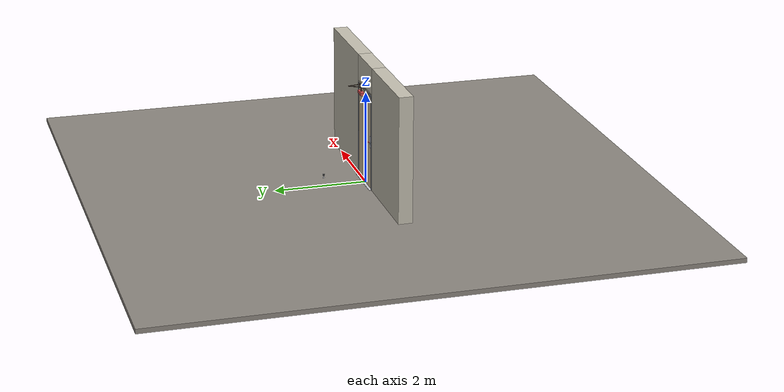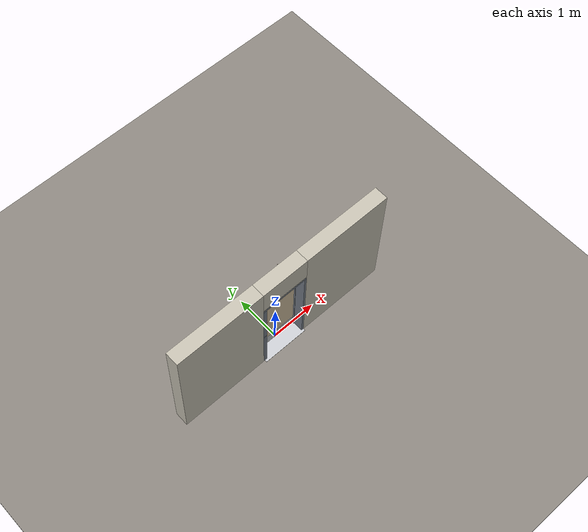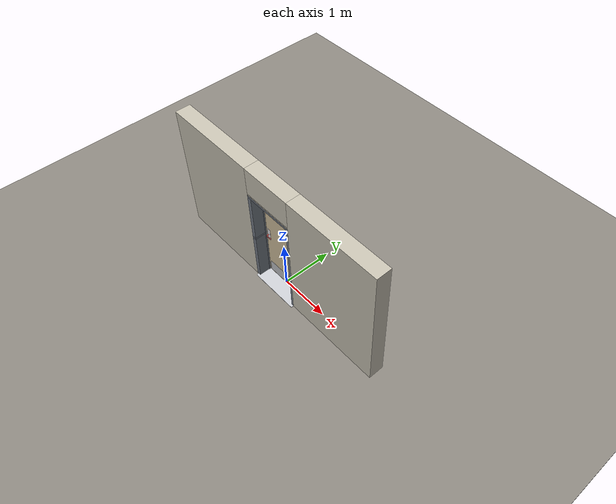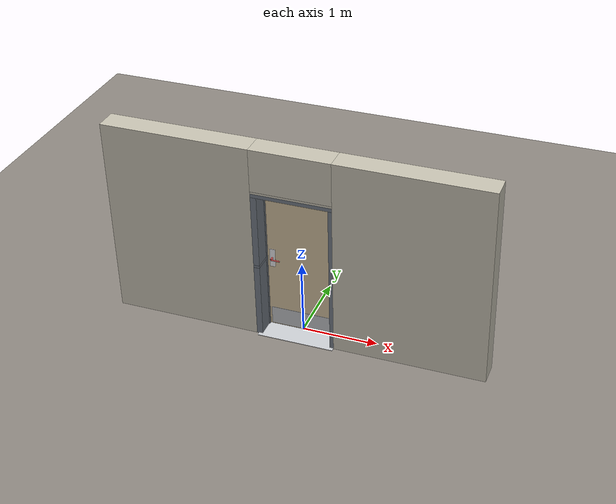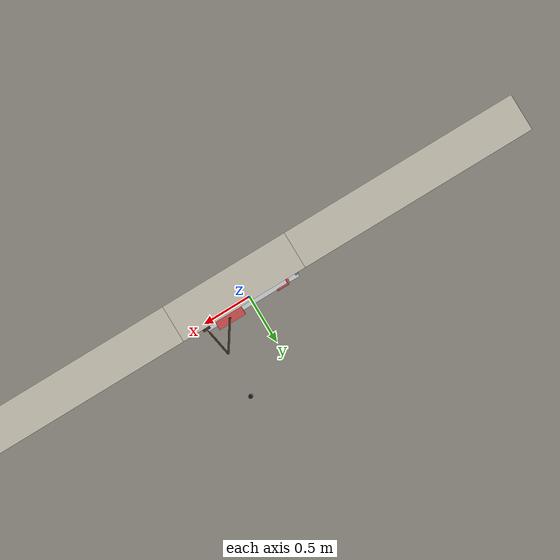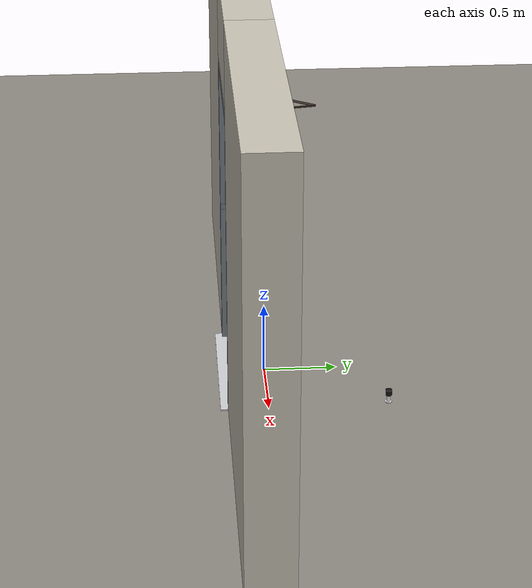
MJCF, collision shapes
<?xml version="1.0" ?>
<mujoco model="db0061_swing_single_full">
  <compiler angle="radian" meshdir="../../hardware" texturedir="../../textures" autolimits="true" inertiafromgeom="false"/>
  <option timestep="0.002" integrator="implicitfast" cone="elliptic" impratio="10" noslip_iterations="3">
    <flag multiccd="enable"/>
  </option>
  <size memory="16M"/>
  <default>
    <geom condim="4" solref="0.005 1" solimp="0.95 0.99 0.001"/>
    <joint solreflimit="0.005 1" solimplimit="0.95 0.99 0.001"/>
    <tendon solreflimit="0.005 1"/>
    <equality solref="0.002 1"/>
  </default>
  <visual>
    <headlight ambient="0.4 0.4 0.4" diffuse="0.7 0.7 0.7" specular="0.2 0.2 0.2"/>
    <quality shadowsize="4096"/>
    <map znear="0.01" zfar="60"/>
  </visual>
  <asset>
    <mesh name="card_reader_38c0bdb077" file="card_reader_38c0bdb077.obj"/>
    <mesh name="closer_body_b226fdb10b" file="closer_body_b226fdb10b.obj"/>
    <mesh name="hinge_e22b26c0c1" file="hinge_e22b26c0c1.obj"/>
    <mesh name="hinge_jamb_e1d088f8dc" file="hinge_jamb_e1d088f8dc.obj"/>
    <mesh name="lever_56c65af20a" file="lever_56c65af20a.obj"/>
    <mesh name="peephole_f829311a59" file="peephole_f829311a59.obj"/>
    <material name="mat_floor" rgba="0.55 0.53 0.5 1" specular="0.2" shininess="0.15" reflectance="0"/>
    <material name="mat_wall" rgba="0.78 0.76 0.7 1" specular="0.2" shininess="0.1" reflectance="0"/>
    <material name="mat_leaf" rgba="0.82 0.75 0.62 1" specular="0.2" shininess="0.59" reflectance="0"/>
    <material name="mat_hinge" rgba="0.65 0.66 0.68 1" specular="0.74" shininess="0.5" reflectance="0.36"/>
    <material name="mat_op_chrome" rgba="0.9 0.9 0.92 1" specular="0.8" shininess="0.9" reflectance="0.4"/>
    <material name="mat_trim" rgba="0.85 0.66 0.3 1" specular="0.8" shininess="0.75" reflectance="0.4"/>
    <material name="mat_reader" rgba="0.05 0.05 0.05 1" specular="0.38" shininess="0.3" reflectance="0.12"/>
    <material name="mat_bolt" rgba="0.75 0.76 0.77 1" specular="0.8" shininess="0.65" reflectance="0.4"/>
    <material name="mat_frame" rgba="0.45 0.48 0.52 1" specular="0.32" shininess="0.6" reflectance="0.08"/>
    <material name="mat_seal" rgba="0.1 0.1 0.1 1" specular="0.2" shininess="0.1" reflectance="0"/>
    <material name="mat_threshold" rgba="0.8 0.81 0.83 1" specular="0.8" shininess="0.6" reflectance="0.4"/>
    <material name="mat_closer" rgba="0.22 0.17 0.13 1" specular="0.8" shininess="0.6" reflectance="0.4"/>
    <material name="mat_kick" rgba="0.75 0.76 0.77 1" specular="0.8" shininess="0.65" reflectance="0.4"/>
    <material name="mat_peephole" rgba="0.85 0.66 0.3 1" specular="0.8" shininess="0.75" reflectance="0.4"/>
    <material name="mat_bumper_stop" rgba="0.08 0.08 0.08 1" specular="0.2" shininess="0.1" reflectance="0"/>
    <material name="mat_stop_base" rgba="0.9 0.9 0.92 1" specular="0.8" shininess="0.9" reflectance="0.4"/>
    <texture name="skybox" type="skybox" builtin="gradient" rgb1="0.6 0.7 0.85" rgb2="0.9 0.92 0.95" width="256" height="256"/>
  </asset>
  <worldbody>
    <light name="sun" pos="1.5 -2.5 4" dir="-0.3 0.5 -0.8" directional="true" diffuse="0.8 0.8 0.8" specular="0.3 0.3 0.3" castshadow="true"/>
    <light name="fill" pos="-1.5 2.5 3" dir="0.3 -0.5 -0.7" directional="true" diffuse="0.35 0.35 0.4" castshadow="false"/>
    <camera name="robot_view" pos="0 -2.663187 1.734312" xyaxes="1 0 0 0 0.26963 0.962964" fovy="52"/>
    <camera name="far_view" pos="0 2.421187 1.734312" xyaxes="-1 0 0 0 -0.26963 0.962964" fovy="52"/>
    <camera name="iso" pos="-1.932062 -2.256438 2.141063" xyaxes="0.741536 -0.670913 0 0.242917 0.268487 0.932151" fovy="46"/>
    <camera name="detail_handle" pos="-0.1105 -0.877 1.32" xyaxes="0.97561 0.219512 0 -0.070934 0.315262 0.94635" fovy="38"/>
    <geom name="floor" type="box" size="6 6 0.05" pos="0 0 -0.05" material="mat_floor" group="0" contype="1" conaffinity="1" friction="0.8 0.005 0.0001" density="2400"/>
    <geom name="wall_left" type="box" size="0.97975 0.15 1.35" pos="-1.52025 -0.121 1.35" material="mat_wall" group="0" contype="1" conaffinity="1" friction="0.6 0.005 0.0001" density="800"/>
    <geom name="wall_right" type="box" size="0.99475 0.15 1.35" pos="1.50525 -0.121 1.35" material="mat_wall" group="0" contype="1" conaffinity="1" friction="0.6 0.005 0.0001" density="800"/>
    <geom name="wall_header" type="box" size="0.5255 0.15 0.2875" pos="-0.015 -0.121 2.4125" material="mat_wall" group="0" contype="1" conaffinity="1" friction="0.6 0.005 0.0001" density="800"/>
    <geom name="hinge_0_jamb" type="mesh" mesh="hinge_jamb_e1d088f8dc" pos="0.4575 0.029 0.259" quat="0 0 0 1" material="mat_hinge" group="1" contype="0" conaffinity="0" density="7850"/>
    <geom name="hinge_1_jamb" type="mesh" mesh="hinge_jamb_e1d088f8dc" pos="0.4575 0.029 1.025" quat="0 0 0 1" material="mat_hinge" group="1" contype="0" conaffinity="0" density="7850"/>
    <geom name="hinge_2_jamb" type="mesh" mesh="hinge_jamb_e1d088f8dc" pos="0.4575 0.029 1.861" quat="0 0 0 1" material="mat_hinge" group="1" contype="0" conaffinity="0" density="7850"/>
    <geom name="jamb_hinge" type="box" size="0.025 0.15 1.0225" pos="0.4855 -0.121 1.0225" material="mat_frame" group="0" contype="1" conaffinity="1" friction="0.6 0.005 0.0001" density="300"/>
    <geom name="strike_1040_wall_n" type="box" size="0.04 0.13075 0.018" pos="-0.5005 -0.14025 1.04" material="mat_frame" group="0" contype="1" conaffinity="1" friction="0.6 0.005 0.0001" density="300"/>
    <geom name="strike_1040_wall_p" type="box" size="0.04 0.008 0.018" pos="-0.5005 0.0175 1.04" material="mat_frame" group="0" contype="1" conaffinity="1" friction="0.6 0.005 0.0001" density="300"/>
    <geom name="strike_1040_ramp" type="box" size="0.04 0.018028 0.018" pos="-0.503782 0.018312 1.04" quat="0.957092 0 0 0.289784" material="mat_frame" group="0" contype="1" conaffinity="1" friction="0.12 0.005 0.0001" density="300"/>
    <geom name="strike_1040_back" type="box" size="0.0285 0.0095 0.018" pos="-0.512 0 1.04" material="mat_frame" group="0" contype="1" conaffinity="1" friction="0.6 0.005 0.0001" density="300"/>
    <geom name="jamb_strike_0" type="box" size="0.04 0.15 0.511" pos="-0.5005 -0.121 0.511" material="mat_frame" group="0" contype="1" conaffinity="1" friction="0.6 0.005 0.0001" density="300"/>
    <geom name="jamb_strike_1" type="box" size="0.04 0.15 0.4935" pos="-0.5005 -0.121 1.5515" material="mat_frame" group="0" contype="1" conaffinity="1" friction="0.6 0.005 0.0001" density="300"/>
    <geom name="jamb_head" type="box" size="0.5255 0.15 0.025" pos="-0.015 -0.121 2.07" material="mat_frame" group="0" contype="1" conaffinity="1" friction="0.6 0.005 0.0001" density="300"/>
    <geom name="head_stud" type="box" size="0.5255 0.15 0.015" pos="-0.015 -0.121 2.11" material="mat_wall" group="0" contype="1" conaffinity="1" friction="0.6 0.005 0.0001" density="500"/>
    <geom name="stop_hinge" type="box" size="0.0055 0.016 1.0225" pos="0.455 -0.0385 1.0225" material="mat_frame" group="0" contype="1" conaffinity="1" friction="0.6 0.005 0.0001" density="300"/>
    <geom name="stop_strike" type="box" size="0.0055 0.016 1.0225" pos="-0.455 -0.0385 1.0225" material="mat_frame" group="0" contype="1" conaffinity="1" friction="0.6 0.005 0.0001" density="300"/>
    <geom name="stop_head" type="box" size="0.4605 0.016 0.0055" pos="0 -0.0385 2.0395" material="mat_frame" group="0" contype="1" conaffinity="1" friction="0.6 0.005 0.0001" density="300"/>
    <geom name="seal_hinge" type="box" size="0.004 0.0025 1.0225" pos="0.4575 -0.0245 1.0225" material="mat_seal" group="1" contype="0" conaffinity="0" density="1100"/>
    <geom name="seal_strike" type="box" size="0.004 0.0025 1.0225" pos="-0.4575 -0.0245 1.0225" material="mat_seal" group="1" contype="0" conaffinity="0" density="1100"/>
    <geom name="seal_head" type="box" size="0.4405 0.0025 0.008" pos="0 -0.0245 2.033" material="mat_seal" group="1" contype="0" conaffinity="0" density="1100"/>
    <geom name="threshold" type="box" size="0.5105 0.2 0.004" pos="0 -0.121 0.004" material="mat_threshold" group="0" contype="1" conaffinity="1" friction="0.6 0.005 0.0001" density="2700"/>
    <geom name="closer_bracket" type="box" size="0.03 0.012 0.014" pos="0.3605 0.041 2.075" material="mat_closer" group="1" contype="0" conaffinity="0" density="2700"/>
    <geom name="door_stop_base" type="cylinder" size="0.022 0.003" pos="0.4735 0.8059 0.003" material="mat_stop_base" group="0" contype="1" conaffinity="1" friction="0.6 0.005 0.0001" density="7850"/>
    <geom name="door_stop_post" type="cylinder" size="0.012 0.0245" pos="0.4735 0.8059 0.0305" material="mat_stop_base" group="0" contype="1" conaffinity="1" friction="0.6 0.005 0.0001" density="7850"/>
    <geom name="door_stop_bumper" type="cylinder" size="0.022 0.02" pos="0.4735 0.8059 0.075" material="mat_bumper_stop" group="0" contype="1" conaffinity="1" friction="0.6 0.005 0.0001" density="1100"/>
    <site name="approach_point" pos="0 -1.5 0" quat="1 0 0 0" size="0.05" rgba="0.2 0.9 0.2 0.5" group="4"/>
    <site name="goal_point" pos="0 1.5 0" quat="1 0 0 0" size="0.05" rgba="0.2 0.9 0.2 0.5" group="4"/>
    <site name="door_plane_center" pos="0 0 1.0225" quat="1 0 0 0" size="0.02" rgba="0.2 0.9 0.2 0.5" group="4"/>
    <body name="leaf" pos="0.4605 0 0">
      <inertial pos="-0.442514 0.007078 1.103407" mass="62.154049" quat="0.50957 -0.512853 -0.495495 -0.481462" diaginertia="4.159585123 25.74668738 29.842449487"/>
      <joint name="leaf_hinge" type="hinge" axis="0 0 -1" pos="-0.003 0.029 0" limited="true" range="0 1.570796" solreflimit="0.02 1" damping="10.25611" frictionloss="2.490077" stiffness="12.859719" springref="-2.527271" armature="0.02"/>
      <geom name="leaf_slab" type="box" size="0.457 0.022 1.016" pos="-0.46 0 1.025" material="mat_leaf" group="0" contype="1" conaffinity="1" friction="0.4 0.005 0.0001" density="1"/>
      <geom name="hinge_0" type="mesh" mesh="hinge_e22b26c0c1" pos="-0.003 0.029 0.259" quat="0 0 0 1" material="mat_hinge" group="1" contype="0" conaffinity="0" density="7850"/>
      <geom name="hinge_1" type="mesh" mesh="hinge_e22b26c0c1" pos="-0.003 0.029 1.025" quat="0 0 0 1" material="mat_hinge" group="1" contype="0" conaffinity="0" density="7850"/>
      <geom name="hinge_2" type="mesh" mesh="hinge_e22b26c0c1" pos="-0.003 0.029 1.861" quat="0 0 0 1" material="mat_hinge" group="1" contype="0" conaffinity="0" density="7850"/>
      <geom name="leaf_handle_escutcheon_n" type="box" size="0.0375 0.0015 0.13" pos="-0.847 -0.0235 1.04" material="mat_op_chrome" group="1" contype="0" conaffinity="0" density="3000"/>
      <geom name="leaf_handle_escutcheon_p" type="box" size="0.0375 0.0015 0.13" pos="-0.847 0.0235 1.04" material="mat_op_chrome" group="1" contype="0" conaffinity="0" density="3000"/>
      <geom name="leaf_handle_reader" type="mesh" mesh="card_reader_38c0bdb077" pos="-0.847 0.022 1.2" quat="0 0 0.707107 0.707107" material="mat_reader" group="1" contype="0" conaffinity="0" density="2000"/>
      <geom name="leaf_latch_bolt_faceplate" type="box" size="0.0006 0.014 0.028" pos="-0.9164 0 1.04" material="mat_bolt" group="1" contype="0" conaffinity="0" density="8500"/>
      <geom name="closer_body" type="mesh" mesh="closer_body_b226fdb10b" pos="-0.3 0.022 1.952" quat="0 0 0.707107 0.707107" material="mat_closer" group="1" contype="0" conaffinity="0" density="2000"/>
      <geom name="closer_body_col" type="box" size="0.12 0.04 0.03" pos="-0.3 0.062 1.952" material="mat_closer" group="3" contype="1" conaffinity="1" rgba="0.8 0.3 0.3 0.25" friction="0.6 0.005 0.0001" density="2000"/>
      <geom name="closer_pinion_shaft" type="cylinder" size="0.008 0.0615" pos="-0.3 0.064 2.0135" material="mat_closer" group="1" contype="0" conaffinity="0" density="2700"/>
      <geom name="kick_plate_n" type="box" size="0.427 0.0008 0.125" pos="-0.46 -0.0228 0.144" material="mat_kick" group="2" contype="0" conaffinity="0" density="7900"/>
      <geom name="peephole" type="mesh" mesh="peephole_f829311a59" pos="-0.46 -0.022 1.509" quat="0 0 -0.707107 0.707107" material="mat_peephole" group="2" contype="0" conaffinity="0" density="8500"/>
      <site name="leaf_edge_mid" pos="-0.917 0 1.016" quat="1 0 0 0" size="0.02" rgba="0.2 0.9 0.2 0.5" group="4"/>
      <body name="leaf_handle" pos="-0.847 0 1.04">
        <inertial pos="0.034904 0 0" mass="0.739068" quat="0.707107 0 0 -0.707107" diaginertia="0.001260094 0.003272501 0.004494637"/>
        <joint name="leaf_handle_hinge" type="hinge" axis="0 1 0" limited="true" range="0 0.87" damping="0.231314" frictionloss="0.06" stiffness="1.1" springref="-0.454545" armature="0.01"/>
        <geom name="leaf_handle_spindle" type="cylinder" size="0.006 0.034" pos="0 0 0" quat="0.707107 -0.707107 0 0" material="mat_op_chrome" group="1" contype="0" conaffinity="0" density="7850"/>
        <geom name="leaf_handle_lever_n" type="mesh" mesh="lever_56c65af20a" pos="0 -0.022 0" quat="0 0 -0.707107 0.707107" material="mat_op_chrome" group="1" contype="0" conaffinity="0" density="3000"/>
        <geom name="leaf_handle_lever_col_n" type="capsule" size="0.0095 0.0505" pos="0.06 -0.077 0" quat="0.707107 0 0.707107 0" material="mat_op_chrome" group="3" contype="1" conaffinity="1" rgba="0.8 0.3 0.3 0.25" friction="0.7 0.01 0.0001" density="3000"/>
        <geom name="leaf_handle_hub_col_n" type="cylinder" size="0.012 0.022" pos="0 -0.052 0" quat="0.707107 -0.707107 0 0" material="mat_op_chrome" group="3" contype="1" conaffinity="1" rgba="0.8 0.3 0.3 0.25" friction="0.6 0.005 0.0001" density="3000"/>
        <geom name="leaf_handle_lever_p" type="mesh" mesh="lever_56c65af20a" pos="0 0.022 0" quat="0 0 0.707107 0.707107" material="mat_op_chrome" group="1" contype="0" conaffinity="0" density="3000"/>
        <geom name="leaf_handle_lever_col_p" type="capsule" size="0.0095 0.0505" pos="0.06 0.077 0" quat="0.707107 0 0.707107 0" material="mat_op_chrome" group="3" contype="1" conaffinity="1" rgba="0.8 0.3 0.3 0.25" friction="0.7 0.01 0.0001" density="3000"/>
        <geom name="leaf_handle_hub_col_p" type="cylinder" size="0.012 0.022" pos="0 0.052 0" quat="0.707107 -0.707107 0 0" material="mat_op_chrome" group="3" contype="1" conaffinity="1" rgba="0.8 0.3 0.3 0.25" friction="0.6 0.005 0.0001" density="3000"/>
        <site name="leaf_handle_grip_n" pos="0.096 -0.077 0" quat="1 0 0 0" size="0.012" rgba="0.2 0.9 0.2 0.5" group="4"/>
        <site name="leaf_handle_grip_p" pos="0.096 0.077 0" quat="1 0 0 0" size="0.012" rgba="0.2 0.9 0.2 0.5" group="4"/>
      </body>
      <body name="leaf_latch_bolt" pos="-0.917 0 1.04">
        <inertial pos="0.0055 0 0" mass="0.074627" quat="0.92388 0.382683 0 0" diaginertia="0.000002271 0.000013255 0.000013255"/>
        <joint name="leaf_latch_bolt_slide" type="slide" axis="1 0 0" limited="true" range="0 0.019" damping="2" frictionloss="0.3" stiffness="550" springref="-0.01" armature="0.1"/>
        <geom name="leaf_latch_bolt_capsule" type="capsule" size="0.008 0.0165" pos="0.0055 0 0" quat="0.707107 0 -0.707107 0" material="mat_bolt" group="0" contype="1" conaffinity="1" friction="0.2 0.005 0.0001" density="8500"/>
      </body>
      <body name="closer_arm_main" pos="-0.3 0.064 2.075" quat="0.881485 0 0 0.472212">
        <inertial pos="0.14 0 0" mass="0.12096" quat="1 0 0 0" diaginertia="0.000003588 0.00079128 0.000792852"/>
        <joint name="closer_pinion" type="hinge" axis="0 0 1" limited="false" damping="0.01" armature="0.002"/>
        <geom name="closer_arm_main_geom" type="box" size="0.14 0.008 0.005" pos="0.14 0 0" material="mat_closer" group="1" contype="0" conaffinity="0" density="2700"/>
        <body name="closer_arm_fore" pos="0.28 0 0" quat="0.371222 0 0 -0.928544">
          <inertial pos="0.128088 0 0" mass="0.076531" quat="1 0 0 0" diaginertia="0.000001771 0.000437665 0.000438201"/>
          <joint name="closer_elbow" type="hinge" axis="0 0 1" limited="false" damping="0.01" armature="0.002"/>
          <geom name="closer_arm_fore_geom" type="box" size="0.1125 0.007 0.004" pos="0.1125 0 0" material="mat_closer" group="1" contype="0" conaffinity="0" density="2700"/>
          <geom name="closer_fore_neck" type="box" size="0.0175 0.003 0.003" pos="0.2425 0 0" material="mat_closer" group="1" contype="0" conaffinity="0" density="2700"/>
          <geom name="closer_fore_pivot" type="cylinder" size="0.005 0.012" pos="0.26 0 0" material="mat_closer" group="1" contype="0" conaffinity="0" density="2700"/>
        </body>
      </body>
    </body>
  </worldbody>
  <tendon>
    <fixed name="leaf_latch_bolt_coupling" limited="true" range="0 10">
      <joint joint="leaf_latch_bolt_slide" coef="1"/>
      <joint joint="leaf_handle_hinge" coef="-0.023457"/>
    </fixed>
  </tendon>
  <equality>
    <connect name="closer_arm_connect" body1="closer_arm_fore" body2="world" anchor="0.26 0 0" active="true"/>
  </equality>
  <contact>
    <exclude body1="closer_arm_main" body2="leaf"/>
    <exclude body1="closer_arm_fore" body2="leaf"/>
    <exclude body1="closer_arm_main" body2="closer_arm_fore"/>
  </contact>
  <sensor>
    <jointpos name="leaf_hinge_pos" joint="leaf_hinge"/>
    <jointvel name="leaf_hinge_vel" joint="leaf_hinge"/>
    <jointpos name="leaf_handle_hinge_pos" joint="leaf_handle_hinge"/>
    <jointvel name="leaf_handle_hinge_vel" joint="leaf_handle_hinge"/>
    <jointpos name="leaf_latch_bolt_slide_pos" joint="leaf_latch_bolt_slide"/>
    <jointvel name="leaf_latch_bolt_slide_vel" joint="leaf_latch_bolt_slide"/>
  </sensor>
</mujoco>
